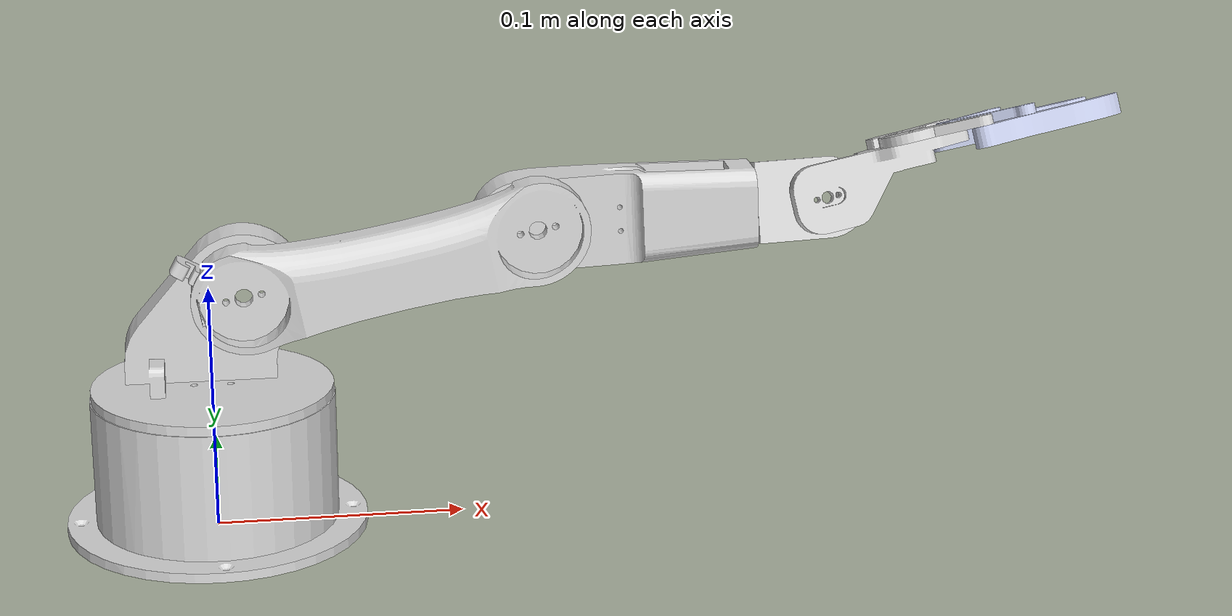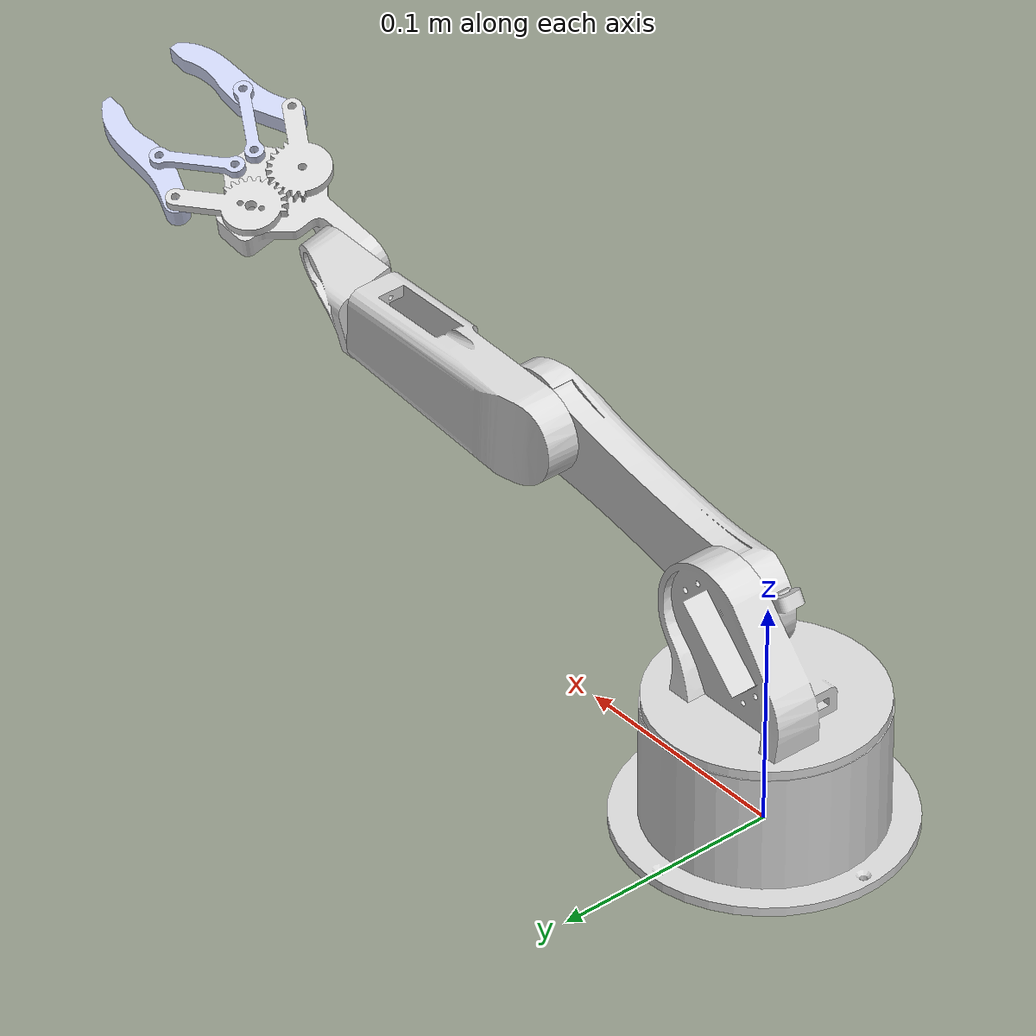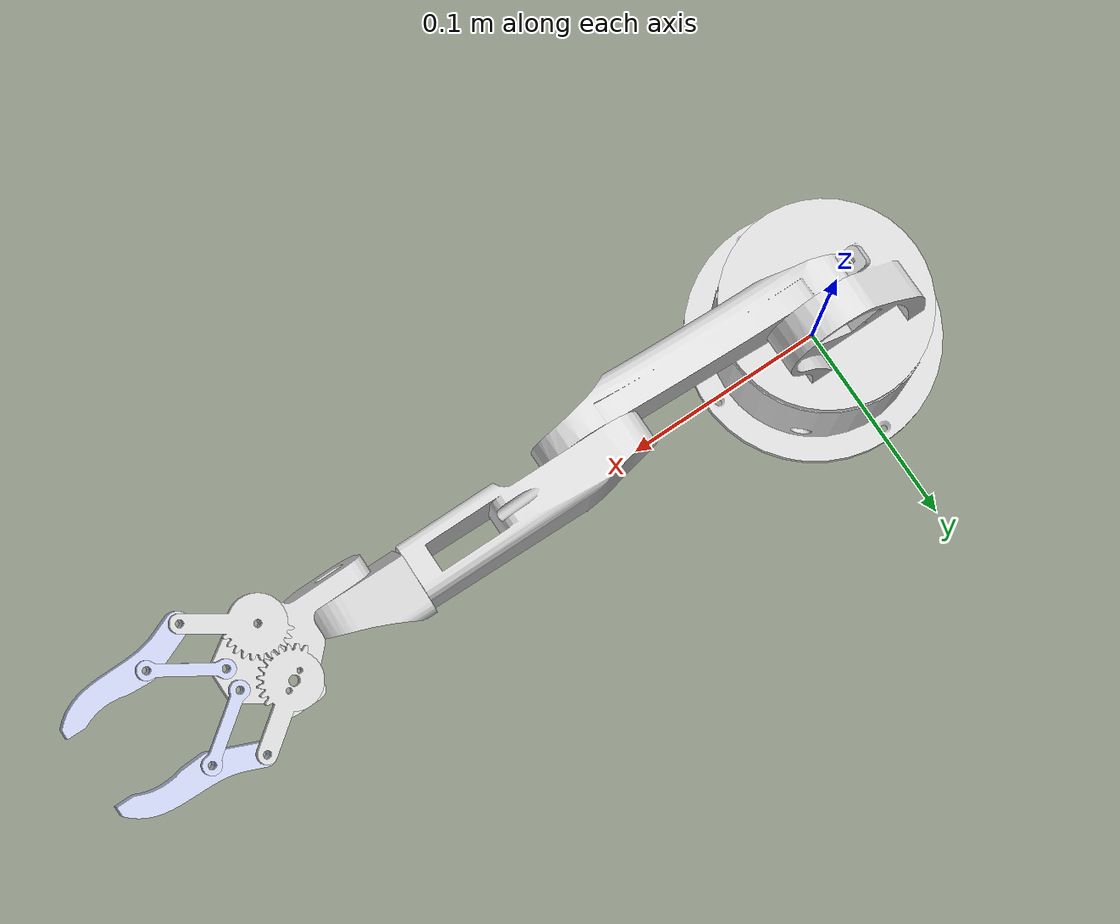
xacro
<?xml version="1.0"?>
<robot xmlns:xacro="http://www.ros.org/wiki/xacro" name="mycobot_description">
    <xacro:arg name="initial_positions_file" default="initial_positions.yaml" />

    <!-- Import mycobot_description urdf file -->
    <xacro:include filename="$(find mycobot_description)/urdf/robots/assembled_arm.urdf.xacro" />

    <!-- Import control_xacro -->
    <xacro:include filename="mycobot_description.ros2_control.xacro" />

    <xacro:mycobot_description_ros2_control name="FakeSystem" initial_positions_file="$(arg initial_positions_file)"/>

</robot>

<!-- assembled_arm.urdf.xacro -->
<robot xmlns:xacro="http://www.ros.org/wiki/xacro" name="mycobot_description">

  <xacro:arg name="robot_name" default="mycobot_280" />
  <xacro:arg name="prefix" default="" />
  <xacro:arg name="flange_link" default="link_5" />
  <xacro:arg name="use_gazebo" default="false" />

  <!-- Include Gazebo Parameters -->
  <xacro:include filename="$(find mycobot_description)/urdf/control/gazebo_sim_ros2_control.urdf.xacro" />

  <!-- Include ros2_control Plugins -->
  <xacro:include filename="$(find mycobot_description)/urdf/control/mycobot_280_ros2_control.urdf.xacro" />

  <!-- Useful XACRO Variables (Properties) -->
  <xacro:property name="PI" value="3.14159265359" />
  <xacro:property name="effort" value="30.0" />
  <xacro:property name="velocity" value="2.0" />

  <xacro:macro name="default_transmission" params="number">
      <transmission name="{number}">
          <plugin>transmission_interface/SimpleTransmission</plugin>
          <actuator name="${number}" role="actuator1"/>
          <joint name="${number}"    role="joint1">
              <mechanical_reduction>1.0</mechanical_reduction>
          </joint>
      </transmission>
  </xacro:macro>

  <link name="world"/>
  <link
    name="base_link">
    <inertial>
      <origin
        xyz="7.9356E-05 8.6233E-05 0.022304"
        rpy="0 0 0" />
      <mass
        value="0.23433" />
      <inertia
        ixx="0.00032508"
        ixy="-1.1755E-05"
        ixz="6.4669E-06"
        iyy="0.00032312"
        iyz="7.0274E-06"
        izz="0.00050748" />
    </inertial>
    <visual>
      <origin
        xyz="0 0 0"
        rpy="0 0 0" />
      <geometry>
        <mesh
          filename="package://mycobot_description/meshes/arm/base_link.STL" />
      </geometry>
      <material
        name="">
        <color
          rgba="0.84706 0.84706 0.84706 1" />
      </material>
    </visual>
    <collision>
      <origin
        xyz="0 0 0"
        rpy="0 0 0" />
      <geometry>
        <mesh
          filename="package://mycobot_description/meshes/arm/base_link.STL" />
      </geometry>
    </collision>
  </link>

  <joint name="virtual_joint" type="fixed">
      <parent link="world"/>
      <child link="base_link"/>
      <origin xyz="0 0 0" rpy="0 0 0"/>
  </joint>

  <link
    name="link_01">
    <inertial>
      <origin
        xyz="0.0013721 0.0064346 0.013289"
        rpy="0 0 0" />
      <mass
        value="0.16601" />
      <inertia
        ixx="0.00010985"
        ixy="-1.566E-06"
        ixz="-1.5234E-05"
        iyy="0.00014185"
        iyz="-1.2633E-05"
        izz="0.00013341" />
    </inertial>
    <visual>
      <origin
        xyz="0 0 0"
        rpy="0 0 0" />
      <geometry>
        <mesh
          filename="package://mycobot_description/meshes/arm/link_01.STL" />
      </geometry>
      <material
        name="">
        <color
          rgba="0.84706 0.84706 0.84706 1" />
      </material>
    </visual>
    <collision>
      <origin
        xyz="0 0 0"
        rpy="0 0 0" />
      <geometry>
        <mesh
          filename="package://mycobot_description/meshes/arm/link_01.STL" />
      </geometry>
    </collision>
  </link>
  <joint
    name="link01"
    type="revolute">
    <origin
      xyz="0 0 0.06"
      rpy="0 0 0" />
    <parent
      link="base_link" />
    <child
      link="link_01" />
    <axis
      xyz="0 0 -1" />
    <limit
      lower="-${PI / 2}"
      upper="${PI / 2}"
      effort="${effort}"
      velocity="${velocity}" />
  </joint>
  <link
    name="link_02">
    <inertial>
      <origin
        xyz="0.057471 0.010862 0.0081673"
        rpy="0 0 0" />
      <mass
        value="0.16142" />
      <inertia
        ixx="3.2261E-05"
        ixy="-4.5084E-05"
        ixz="3.8107E-07"
        iyy="0.00025392"
        iyz="8.5591E-07"
        izz="0.00027446" />
    </inertial>
    <visual>
      <origin
        xyz="0 0 0"
        rpy="0 0 0" />
      <geometry>
        <mesh
          filename="package://mycobot_description/meshes/arm/link_02.STL" />
      </geometry>
      <material
        name="">
        <color
          rgba="0.84706 0.84706 0.84706 1" />
      </material>
    </visual>
    <collision>
      <origin
        xyz="0 0 0"
        rpy="0 0 0" />
      <geometry>
        <mesh
          filename="package://mycobot_description/meshes/arm/link_02.STL" />
      </geometry>
    </collision>
  </link>
  <joint
    name="link02"
    type="revolute">
    <origin
      xyz="0.0139185063019885 0.00399999999999982 0.0362764801759332"
      rpy="1.5707963267949 0 0" />
    <parent
      link="link_01" />
    <child
      link="link_02" />
    <axis
      xyz="0 0 -1" />
    <limit
      lower="-${PI / 2}"
      upper="${PI / 2}"
      effort="${effort}"
      velocity="${velocity}" />
  </joint>
  <link
    name="link_03">
    <inertial>
      <origin
        xyz="0.034603 0.0015477 -0.00917"
        rpy="0 0 0" />
      <mass
        value="0.15178" />
      <inertia
        ixx="2.7281E-05"
        ixy="-5.8562E-06"
        ixz="-4.2386E-06"
        iyy="0.00015566"
        iyz="-1.9265E-07"
        izz="0.00016476" />
    </inertial>
    <visual>
      <origin
        xyz="0 0 0"
        rpy="0 0 0" />
      <geometry>
        <mesh
          filename="package://mycobot_description/meshes/arm/link_03.STL" />
      </geometry>
      <material
        name="">
        <color
          rgba="0.84706 0.84706 0.84706 1" />
      </material>
    </visual>
    <collision>
      <origin
        xyz="0 0 0"
        rpy="0 0 0" />
      <geometry>
        <mesh
          filename="package://mycobot_description/meshes/arm/link_03.STL" />
      </geometry>
    </collision>
  </link>
  <joint
    name="link03"
    type="revolute">
    <origin
      xyz="0.117775321663995 0.0229994262307236 0"
      rpy="0 0 0" />
    <parent
      link="link_02" />
    <child
      link="link_03" />
    <axis
      xyz="0 0 -1" />
    <limit
      lower="-${PI / 2}"
      upper="${PI / 2}"
      effort="${effort}"
      velocity="${velocity}" />
  </joint>
  <link
    name="link_04">
    <inertial>
      <origin
        xyz="0.0062908 0.0036913 0.017838"
        rpy="0 0 0" />
      <mass
        value="0.040252" />
      <inertia
        ixx="9.7487E-06"
        ixy="7.1832E-07"
        ixz="-3.5703E-07"
        iyy="1.2045E-05"
        iyz="-1.3597E-06"
        izz="6.3736E-06" />
    </inertial>
    <visual>
      <origin
        xyz="0 0 0"
        rpy="0 0 0" />
      <geometry>
        <mesh
          filename="package://mycobot_description/meshes/arm/link_04.STL" />
      </geometry>
      <material
        name="">
        <color
          rgba="0.84706 0.84706 0.84706 1" />
      </material>
    </visual>
    <collision>
      <origin
        xyz="0 0 0"
        rpy="0 0 0" />
      <geometry>
        <mesh
          filename="package://mycobot_description/meshes/arm/link_04.STL" />
      </geometry>
    </collision>
  </link>
  <joint
    name="link04"
    type="revolute">
    <origin
      xyz="0.0898963239571994 -0.00134292180789244 -0.00750000000015688"
      rpy="1.57079632679547 0 1.6148432998894" />
    <parent
      link="link_03" />
    <child
      link="link_04" />
    <axis
      xyz="0 0 -1" />
    <limit
      lower="-${PI / 2}"
      upper="${PI / 2}"
      effort="${effort}"
      velocity="${velocity}" />
  </joint>
  <link
    name="link_05">
    <inertial>
      <origin
        xyz="0.0220055282440819 0.0103128748451481 -0.00168247502027706"
        rpy="0 0 0" />
      <mass
        value="0.0384967724966736" />
      <inertia
        ixx="7.97522134375839E-06"
        ixy="-5.69126623740878E-06"
        ixz="3.12729480847135E-06"
        iyy="1.80252128543063E-05"
        iyz="1.44930530889962E-06"
        izz="1.77669435654343E-05" />
    </inertial>
    <visual>
      <origin
        xyz="0 0 0"
        rpy="0 0 0" />
      <geometry>
        <mesh
          filename="package://mycobot_description/meshes/arm/link_05.STL" />
      </geometry>
      <material
        name="">
        <color
          rgba="0.847058823529412 0.847058823529412 0.847058823529412 1" />
      </material>
    </visual>
    <collision>
      <origin
        xyz="0 0 0"
        rpy="0 0 0" />
      <geometry>
        <mesh
          filename="package://mycobot_description/meshes/arm/link_05.STL" />
      </geometry>
    </collision>
  </link>
  <joint
    name="link05"
    type="revolute">
    <origin
      xyz="0.00862433742162974 0.0121087077773864 0.0279999999985046"
      rpy="1.2951791853082 -1.5267493537004 3.14159265357669" />
    <parent
      link="link_04" />
    <child
      link="link_05" />
    <axis
      xyz="0.0119938755305361 0 -0.99992807088798" />
    <limit
      lower="-${PI / 2}"
      upper="${PI / 2}"
      effort="${effort}"
      velocity="${velocity}" />
  </joint>
  <link
    name="gear_01">
    <inertial>
      <origin
        xyz="0.00484686177552274 0.0028352843132101 0.000965651918100024"
        rpy="0 0 0" />
      <mass
        value="0.00626069759319902" />
      <inertia
        ixx="4.94651113042426E-07"
        ixy="-3.18198452141893E-07"
        ixz="-1.1834116106538E-07"
        iyy="6.34258100206574E-07"
        iyz="-6.33954422614712E-08"
        izz="1.0650592318745E-06" />
    </inertial>
    <visual>
      <origin
        xyz="0 0 0"
        rpy="0 0 0" />
      <geometry>
        <mesh
          filename="package://mycobot_description/meshes/arm/gear_01.STL" />
      </geometry>
      <material
        name="">
        <color
          rgba="0.847058823529412 0.847058823529412 0.847058823529412 1" />
      </material>
    </visual>
    <collision>
      <origin
        xyz="0 0 0"
        rpy="0 0 0" />
      <geometry>
        <mesh
          filename="package://mycobot_description/meshes/arm/gear_01.STL" />
      </geometry>
    </collision>
  </link>
  <joint
    name="gear01"
    type="revolute">
    <origin
      xyz="0.0343531843661787 0.0231169970379704 -0.0174892301673279"
      rpy="-1.57318606960502 0 0" />
    <parent
      link="link_05" />
    <child
      link="gear_01" />
    <axis
      xyz="-0.195392233943096 0 0.980725178077287" />
    <limit
      lower="-0.1483"
      upper="0.253"
      effort="${effort}"
      velocity="${velocity}" />
  </joint>
  <link
    name="gripper_01">
    <inertial>
      <origin
        xyz="0.0274934008154756 -0.00685965883305825 -0.00293454531382206"
        rpy="0 0 0" />
      <mass
        value="0.00539747000347208" />
      <inertia
        ixx="2.00471286035515E-07"
        ixy="2.72285352657449E-07"
        ixz="-3.01578159539568E-07"
        iyy="1.63881252827097E-06"
        iyz="5.4244531201133E-08"
        izz="1.65412383984527E-06" />
    </inertial>
    <visual>
      <origin
        xyz="0 0 0"
        rpy="0 0 0" />
      <geometry>
        <mesh
          filename="package://mycobot_description/meshes/arm/gripper_01.STL" />
      </geometry>
      <material
        name="">
        <color
          rgba="0.792156862745098 0.819607843137255 0.933333333333333 1" />
      </material>
    </visual>
    <collision>
      <origin
        xyz="0 0 0"
        rpy="0 0 0" />
      <geometry>
        <mesh
          filename="package://mycobot_description/meshes/arm/gripper_01.STL" />
      </geometry>
    </collision>
  </link>
  <!-- gripper01: fixed joint, no mimic needed -->
  <joint
    name="gripper01"
    type="fixed">
    <origin
      xyz="0.024027 0.018046 0.0068263"
      rpy="0 0 0" />
    <parent
      link="gear_01" />
    <child
      link="gripper_01" />
    <axis
      xyz="0 0 0" />
  </joint>
  <link
    name="gear_02">
    <inertial>
      <origin
        xyz="0.00526569330330506 -0.00260322663434469 -0.00099021055503537"
        rpy="0 0 0" />
      <mass
        value="0.00644553641449659" />
      <inertia
        ixx="4.7221165163368E-07"
        ixy="3.11754868753541E-07"
        ixz="-1.23335444094742E-07"
        iyy="6.6081365106047E-07"
        iyz="6.21116716555221E-08"
        izz="1.06669237177848E-06" />
    </inertial>
    <visual>
      <origin
        xyz="0 0 0"
        rpy="0 0 0" />
      <geometry>
        <mesh
          filename="package://mycobot_description/meshes/arm/gear_02.STL" />
      </geometry>
      <material
        name="">
        <color
          rgba="0.847058823529412 0.847058823529412 0.847058823529412 1" />
      </material>
    </visual>
    <collision>
      <origin
        xyz="0 0 0"
        rpy="0 0 0" />
      <geometry>
        <mesh
          filename="package://mycobot_description/meshes/arm/gear_02.STL" />
      </geometry>
    </collision>
  </link>
  <joint
    name="gear02"
    type="revolute">
    <origin
      xyz="0.03364 0.025078 0.0094041"
      rpy="-1.5732 0 0" />
    <parent
      link="link_05" />
    <child
      link="gear_02" />
    <axis
      xyz="-0.19539 0 0.98073" />
    <limit
      lower="-0.1483"
      upper="0.253"
      effort="0"
      velocity="0" />
    <mimic
      joint="gear01"
      multiplier="-1"
      offset="0" />
  </joint>
  <link
    name="gripper_02">
    <inertial>
      <origin
        xyz="0.0278050946308295 0.00549352470343977 -0.00287248750004027"
        rpy="0 0 0" />
      <mass
        value="0.00539747216743088" />
      <inertia
        ixx="1.76859937959386E-07"
        ixy="-1.95375154530075E-07"
        ixz="-3.06294631895628E-07"
        iyy="1.663360877262E-06"
        iyz="-3.89280948492638E-08"
        izz="1.65317613349989E-06" />
    </inertial>
    <visual>
      <origin
        xyz="0 0 0"
        rpy="0 0 0" />
      <geometry>
        <mesh
          filename="package://mycobot_description/meshes/arm/gripper_02.STL" />
      </geometry>
      <material
        name="">
        <color
          rgba="0.792156862745098 0.819607843137255 0.933333333333333 1" />
      </material>
    </visual>
    <collision>
      <origin
        xyz="0 0 0"
        rpy="0 0 0" />
      <geometry>
        <mesh
          filename="package://mycobot_description/meshes/arm/gripper_02.STL" />
      </geometry>
    </collision>
  </link>
  <!-- FIX 1: gripper02 is fixed joint — mimic tag REMOVED -->
  <joint
    name="gripper02"
    type="fixed">
    <origin
      xyz="0.02506 -0.017106 0.0049928"
      rpy="0 0 0" />
    <parent
      link="gear_02" />
    <child
      link="gripper_02" />
    <axis
      xyz="0 0 0" />
  </joint>
  <link
    name="accessory_01">
    <inertial>
      <origin
        xyz="0.0127366608297049 -0.0084609859228708 0.00253755554283913"
        rpy="0 0 0" />
      <mass
        value="0.000798762413184688" />
      <inertia
        ixx="3.5936646569313E-08"
        ixy="4.45364289913622E-08"
        ixz="-1.36449449594972E-08"
        iyy="7.33361273655352E-08"
        iyz="8.87309977007625E-09"
        izz="1.01705710486184E-07" />
    </inertial>
    <visual>
      <origin
        xyz="0 0 0"
        rpy="0 0 0" />
      <geometry>
        <mesh
          filename="package://mycobot_description/meshes/arm/accessory_01.STL" />
      </geometry>
      <material
        name="">
        <color
          rgba="0.792156862745098 0.819607843137255 0.933333333333333 1" />
      </material>
    </visual>
    <collision>
      <origin
        xyz="0 0 0"
        rpy="0 0 0" />
      <geometry>
        <mesh
          filename="package://mycobot_description/meshes/arm/accessory_01.STL" />
      </geometry>
    </collision>
  </link>
  <!-- FIX 2: accessory01 now mimics gear01 directly (not gear02 chain) -->
  <!-- multiplier=-1 because: gear02=-1*gear01, accessory01=1*gear02 => net -1*gear01 -->
  <joint
    name="accessory01"
    type="revolute">
    <origin
      xyz="0.05374 0.027025 0.0016447"
      rpy="-1.5732 0 0" />
    <parent
      link="link_05" />
    <child
      link="accessory_01" />
    <axis
      xyz="-0.19539 0 0.98073" />
    <limit
      lower="-0.1483"
      upper="0.253"
      effort="${effort}"
      velocity="${velocity}" />
    <mimic
      joint="gear01"
      multiplier="-1"
      offset="0" />
  </joint>
  <link
    name="accessory_02">
    <inertial>
      <origin
        xyz="0.0123033749142943 0.00910321001325608 0.00245123094881883"
        rpy="0 0 0" />
      <mass
        value="0.000798762413184687" />
      <inertia
        ixx="4.0420468446262E-08"
        ixy="-4.62868531159467E-08"
        ixz="-1.27516223525543E-08"
        iyy="6.86743266789957E-08"
        iyz="-9.22184097498933E-09"
        izz="1.01883689295774E-07" />
    </inertial>
    <visual>
      <origin
        xyz="0 0 0"
        rpy="0 0 0" />
      <geometry>
        <mesh
          filename="package://mycobot_description/meshes/arm/accessory_02.STL" />
      </geometry>
      <material
        name="">
        <color
          rgba="0.792156862745098 0.819607843137255 0.933333333333333 1" />
      </material>
    </visual>
    <collision>
      <origin
        xyz="0 0 0"
        rpy="0 0 0" />
      <geometry>
        <mesh
          filename="package://mycobot_description/meshes/arm/accessory_02.STL" />
      </geometry>
    </collision>
  </link>
  <joint
    name="accessory02"
    type="revolute">
    <origin
      xyz="0.053859 0.027025 -0.0083546"
      rpy="-1.5732 0 0" />
    <parent
      link="link_05" />
    <child
      link="accessory_02" />
    <axis
      xyz="-0.19539 0 0.98073" />
    <limit
      lower="-0.1483"
      upper="0.253"
      effort="0"
      velocity="0" />
    <mimic
      joint="gear01"
      multiplier="1"
      offset="0" />
  </joint>

  <!-- Mimic behavior is defined by URDF mimic tags on joints.
       Do not load extra mimic plugins here for Gazebo Sim. -->

  <!-- Transmissions -->
  <xacro:default_transmission number="link01"/>
  <xacro:default_transmission number="link02"/>
  <xacro:default_transmission number="link03"/>
  <xacro:default_transmission number="link04"/>
  <xacro:default_transmission number="link05"/>
  <xacro:default_transmission number="gear01"/>
  <!-- FIX 5: Removed gripper01 and gripper02 transmissions (fixed joints) -->
  <xacro:default_transmission number="gear02"/>
  <xacro:default_transmission number="accessory01"/>
  <xacro:default_transmission number="accessory02"/>

  <xacro:mycobot_ros2_control
    prefix="$(arg prefix)"
    flange_link="$(arg flange_link)"
    use_gazebo="$(arg use_gazebo)" />

  <xacro:load_gazebo_sim_ros2_control_plugin
    robot_name="$(arg robot_name)"
    use_gazebo="$(arg use_gazebo)" />
</robot>
